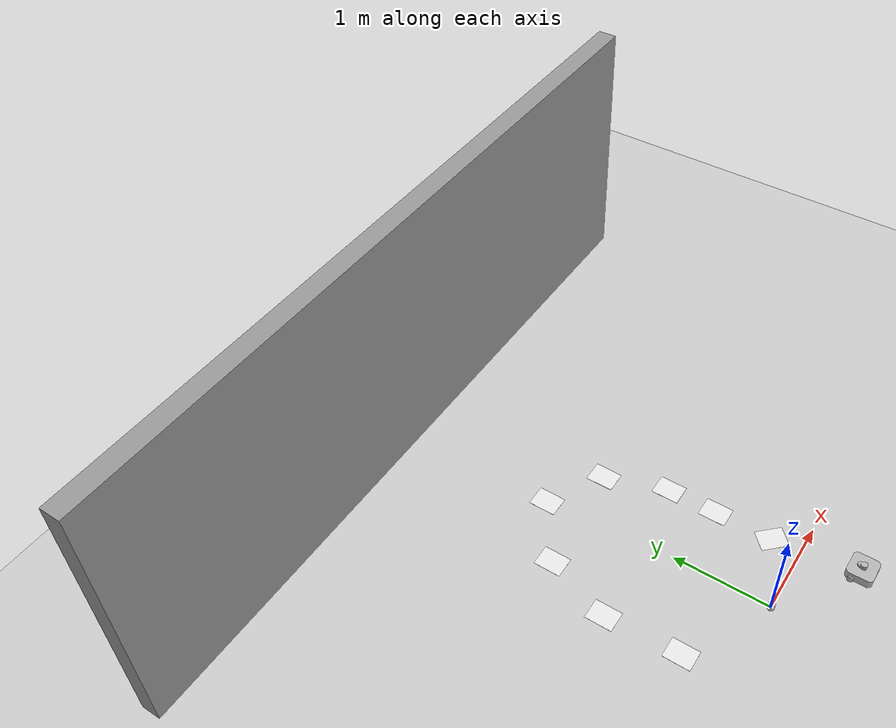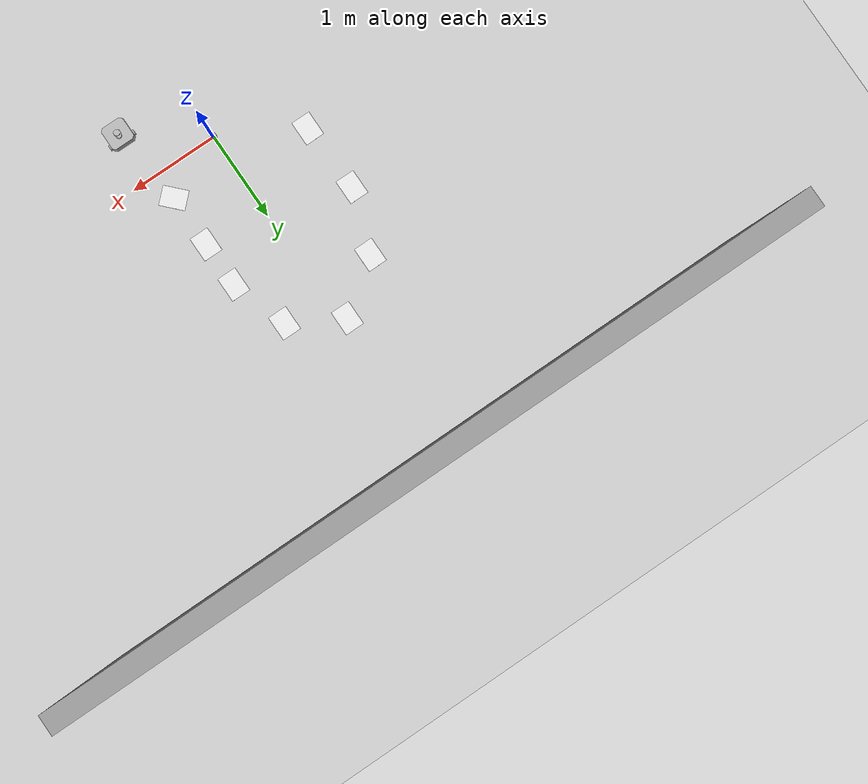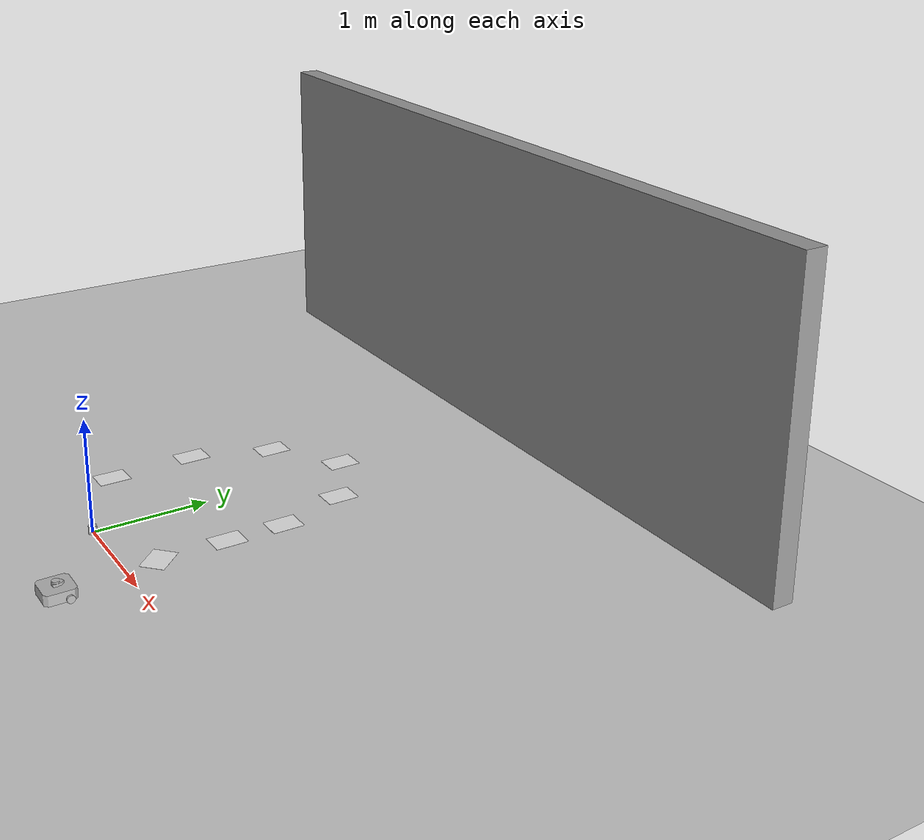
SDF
<sdf version="1.7">
 <world name="animated_box_world">
  <include><uri>model://ground_plane</uri></include>
  <include><uri>model://sun</uri></include>
  <scene><ambient>0.4 0.4 0.4 1</ambient><background>0.7 0.7 0.7 1</background><shadows>0</shadows></scene>
  <model name="track"><include><uri>model://lane_markings</uri></include></model>
  <model name="turtlebot">
   <include><uri>model://umd_turtlebot3_waffle_pi</uri></include>
   <pose>0.8 -0.5 0.0005 0 -0 1.57</pose>
  </model>
  <model name="beer">
   <include><uri>model://beer</uri></include>
   <plugin name="my_plugin" filename="libanimated_box.so">
    <trajectory>
     <waypoint><time>0</time><pose>0 2 0 0 0 -1.57</pose></waypoint>
     <waypoint><time>2</time><pose>0 -1 0 0 0 -1.57</pose></waypoint>
     <waypoint><time>2.5</time><pose>0 -1 0 0 0 1.57</pose></waypoint>
     <waypoint><time>5.5</time><pose>0 -1 0 0 0 1.57</pose></waypoint>
     <waypoint><time>10</time><pose>0 2 0 0 0 1.57</pose></waypoint>
     <waypoint><time>10</time><pose>0 2 0 0 0 -1.57</pose></waypoint>
    </trajectory>
   </plugin>
  </model>
  <model name="grey_2"><include><uri>model://grey_wall</uri></include><pose>0 4 0.0005 0 -0 0</pose></model>
 </world>
</sdf>

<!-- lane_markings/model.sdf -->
<sdf version="1.5">
    <model name='lane_markings'>
      <pose>0.0 0.0 0.0 0.0 0.0 0.0</pose>

      <include>
        <name>paper1</name>
        <uri>model://paper_letter_size</uri>
        <pose>0.693715 0.885508 0.0005 0 -0 0</pose>
      </include>

      <include>
        <name>paper2</name>
        <uri>model://paper_letter_size</uri>
        <pose>0.696717 0.294755 0.0005 0 0 0.760685</pose>
      </include>

      <include>
        <name>paper3</name>
        <uri>model://paper_letter_size</uri>
        <pose>0.690265 1.39362 0.0005 0 -0 0</pose>
      </include>

      <include>
        <name>paper4</name>
        <uri>model://paper_letter_size</uri>
        <pose>0.482471 2.02232 0.0005 0 -0 0</pose>
      </include>

      <include>
        <name>paper5</name>
        <uri>model://paper_letter_size</uri>
        <pose>-0.082798 2.34506 0.0005 0 -0 0</pose>
      </include>

      <include>
        <name>paper6</name>
        <uri>model://paper_letter_size</uri>
        <pose>-0.649394 1.93556 0.0005 0 -0 0</pose>
      </include>

      <include>
        <name>paper7</name>
        <uri>model://paper_letter_size</uri>
        <pose>-0.88953 1.24394 0.0005 0 -0 0</pose>
      </include>

      <include>
        <name>paper8</name>
        <uri>model://paper_letter_size</uri>
        <pose>-0.856204 0.476271 0.0005 0 4e-06 0</pose>
      </include>

      <static>1</static>
      <allow_auto_disable>1</allow_auto_disable>
    </model>
</sdf>

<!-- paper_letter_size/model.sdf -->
<sdf version="1.5">
    <model name='paper_letter_size'>
    <pose>0.0 0.0 0.0 0.0 0.0 0.0</pose>
      <link name='link'>
        <inertial>
          <mass>1</mass>
          <inertia>
            <ixx>0.166667</ixx>
            <ixy>0</ixy>
            <ixz>0</ixz>
            <iyy>0.166667</iyy>
            <iyz>0</iyz>
            <izz>0.166667</izz>
          </inertia>
          <pose>0 0 0 0 -0 0</pose>
        </inertial>
        <self_collide>0</self_collide>
        <enable_wind>0</enable_wind>
        <kinematic>0</kinematic>
        <pose>0 0 0 0 -0 0</pose>
        <gravity>1</gravity>
        <visual name='visual'>
          <geometry>
            <box>
              <size>0.2159 0.2794 0.001</size>
            </box>
          </geometry>
          <material>
            <script>
              <name>Gazebo/White</name>
              <uri>file://media/materials/scripts/gazebo.material</uri>
            </script>
            <shader type='pixel'>
              <normal_map>__default__</normal_map>
            </shader>
            <ambient>1 1 1 1</ambient>
            <diffuse>1 1 1 1</diffuse>
            <specular>0 0 0 1</specular>
            <emissive>0 0 0 1</emissive>
          </material>
          <pose>0 0 0 0 -0 0</pose>
          <transparency>0</transparency>
          <cast_shadows>1</cast_shadows>
        </visual>
        <collision name='collision'>
          <laser_retro>0</laser_retro>
          <max_contacts>10</max_contacts>
          <pose>0 0 0 0 -0 0</pose>
          <geometry>
            <box>
              <size>0.2159 0.2794 0.001</size>
            </box>
          </geometry>
          <surface>
            <friction>
              <ode>
                <mu>1</mu>
                <mu2>1</mu2>
                <fdir1>0 0 0</fdir1>
                <slip1>0</slip1>
                <slip2>0</slip2>
              </ode>
              <torsional>
                <coefficient>1</coefficient>
                <patch_radius>0</patch_radius>
                <surface_radius>0</surface_radius>
                <use_patch_radius>1</use_patch_radius>
                <ode>
                  <slip>0</slip>
                </ode>
              </torsional>
            </friction>
            <bounce>
              <restitution_coefficient>0</restitution_coefficient>
              <threshold>1e+06</threshold>
            </bounce>
            <contact>
              <collide_without_contact>0</collide_without_contact>
              <collide_without_contact_bitmask>1</collide_without_contact_bitmask>
              <collide_bitmask>1</collide_bitmask>
              <ode>
                <soft_cfm>0</soft_cfm>
                <soft_erp>0.2</soft_erp>
                <kp>1e+13</kp>
                <kd>1</kd>
                <max_vel>0.01</max_vel>
                <min_depth>0</min_depth>
              </ode>
              <bullet>
                <split_impulse>1</split_impulse>
                <split_impulse_penetration_threshold>-0.01</split_impulse_penetration_threshold>
                <soft_cfm>0</soft_cfm>
                <soft_erp>0.2</soft_erp>
                <kp>1e+13</kp>
                <kd>1</kd>
              </bullet>
            </contact>
          </surface>
        </collision>
      </link>
      <static>1</static>
      <allow_auto_disable>1</allow_auto_disable>
    </model>
</sdf>

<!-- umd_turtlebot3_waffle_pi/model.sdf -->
<sdf version="1.5">
  <model name="umd_turtlebot3_waffle_pi">
  <pose>0.0 0.0 0.0 0.0 0.0 0.0</pose>

    <link name="base_footprint"/>

    <link name="base_link">

      <inertial>
        <pose>-0.064 0 0.048 0 0 0</pose>
        <inertia>
          <ixx>4.2111447e-02</ixx>
          <ixy>0</ixy>
          <ixz>0</ixz>
          <iyy>4.2111447e-02</iyy>
          <iyz>0</iyz>
          <izz>7.5254874e-02</izz>
        </inertia>
        <mass>1.3729096e+00</mass>
      </inertial>

      <collision name="base_collision">
        <pose>-0.064 0 0.048 0 0 0</pose>
        <geometry>
          <box>
            <size>0.265 0.265 0.089</size>
          </box>
        </geometry>
      </collision>

      <visual name="base_visual">
        <pose>-0.064 0 0 0 0 0</pose>
        <geometry>
          <mesh>
            <uri>model://turtlebot3_common/meshes/waffle_pi_base.dae</uri>
            <scale>0.001 0.001 0.001</scale>
          </mesh>
        </geometry>
      </visual>
    </link>

    <link name="imu_link">
      <sensor name="tb3_imu" type="imu">
        <always_on>true</always_on>
        <update_rate>200</update_rate>
        <imu>
          <angular_velocity>
            <x>
              <noise type="gaussian">
                <mean>0.0</mean>
                <stddev>2e-4</stddev>
              </noise>
            </x>
            <y>
              <noise type="gaussian">
                <mean>0.0</mean>
                <stddev>2e-4</stddev>
              </noise>
            </y>
            <z>
              <noise type="gaussian">
                <mean>0.0</mean>
                <stddev>2e-4</stddev>
              </noise>
            </z>
          </angular_velocity>
          <linear_acceleration>
            <x>
              <noise type="gaussian">
                <mean>0.0</mean>
                <stddev>1.7e-2</stddev>
              </noise>
            </x>
            <y>
              <noise type="gaussian">
                <mean>0.0</mean>
                <stddev>1.7e-2</stddev>
              </noise>
            </y>
            <z>
              <noise type="gaussian">
                <mean>0.0</mean>
                <stddev>1.7e-2</stddev>
              </noise>
            </z>
          </linear_acceleration>
        </imu>
        <plugin name="turtlebot3_imu" filename="libgazebo_ros_imu_sensor.so">
          <ros>
            <remapping>~/out:=imu</remapping>
          </ros>
        </plugin>
      </sensor>
    </link>

    <link name="base_scan">
      <inertial>
        <pose>-0.052 0 0.111 0 0 0</pose>
        <inertia>
          <ixx>0.001</ixx>
          <ixy>0.000</ixy>
          <ixz>0.000</ixz>
          <iyy>0.001</iyy>
          <iyz>0.000</iyz>
          <izz>0.001</izz>
        </inertia>
        <mass>0.114</mass>
      </inertial>

      <collision name="lidar_sensor_collision">
        <pose>-0.052 0 0.111 0 0 0</pose>
        <geometry>
          <cylinder>
            <radius>0.0508</radius>
            <length>0.055</length>
          </cylinder>
        </geometry>
      </collision>

      <visual name="lidar_sensor_visual">
        <pose>-0.064 0 0.121 0 0 0</pose>
        <geometry>
          <mesh>
            <uri>model://turtlebot3_common/meshes/lds.dae</uri>
            <scale>0.001 0.001 0.001</scale>
          </mesh>
        </geometry>
      </visual>

      <sensor name="hls_lfcd_lds" type="ray">
        <always_on>false</always_on> <!--TC: disable the laser scan -->
        <visualize>false</visualize> <!-- TC: don't show the laser scan-->
        <pose>-0.064 0 0.121 0 0 0</pose>
        <update_rate>5</update_rate>
        <ray>
          <scan>
            <horizontal>
              <samples>360</samples>
              <resolution>1.000000</resolution>
              <min_angle>0.000000</min_angle>
              <max_angle>6.280000</max_angle>
            </horizontal>
          </scan>
          <range>
            <min>0.120000</min>
            <max>3.5</max>
            <resolution>0.015000</resolution>
          </range>
          <noise>
            <type>gaussian</type>
            <mean>0.0</mean>
            <stddev>0.01</stddev>
          </noise>
        </ray>
        <plugin name="turtlebot3_laserscan" filename="libgazebo_ros_ray_sensor.so">
          <ros>
            <remapping>~/out:=scan</remapping>
          </ros>
          <output_type>sensor_msgs/LaserScan</output_type>
          <frame_name>base_scan</frame_name>
        </plugin>
      </sensor>
    </link>

    <link name="wheel_left_link">

      <inertial>
        <pose>0.0 0.144 0.023 -1.57 0 0</pose>
        <inertia>
          <ixx>1.8158194e-03</ixx>
          <ixy>-9.3392e-12</ixy>
          <ixz>1.04909e-11</ixz>
          <iyy>3.2922126e-03</iyy>
          <iyz>5.75694e-11</iyz>
          <izz>1.8158194e-03</izz>
        </inertia>
        <mass>2.8498940e-02</mass>
      </inertial>

      <collision name="wheel_left_collision">
        <pose>0.0 0.144 0.023 -1.57 0 0</pose>
        <geometry>
          <cylinder>
            <radius>0.033</radius>
            <length>0.018</length>
          </cylinder>
        </geometry>
        <surface>
          <!-- This friction pamareter don't contain reliable data!! -->
          <friction>
            <ode>
              <mu>100000</mu>
              <mu2>100000</mu2>
              <fdir1>0 0 0</fdir1>
              <slip1>0.0</slip1>
              <slip2>0.0</slip2>
            </ode>
          </friction>
          <contact>
            <ode>
              <soft_cfm>0</soft_cfm>
              <soft_erp>0.2</soft_erp>
              <kp>1e+5</kp>
              <kd>1</kd>
              <max_vel>0.01</max_vel>
              <min_depth>0.001</min_depth>
            </ode>
          </contact>
        </surface>
      </collision>

      <visual name="wheel_left_visual">
        <pose>0.0 0.144 0.023 0 0 0</pose>
        <geometry>
          <mesh>
            <uri>model://turtlebot3_common/meshes/tire.dae</uri>
            <scale>0.001 0.001 0.001</scale>
          </mesh>
        </geometry>
      </visual>
    </link>

    <link name="wheel_right_link">

      <inertial>
        <pose>0.0 -0.144 0.023 -1.57 0 0</pose>
        <inertia>
          <ixx>1.8158194e-03</ixx>
          <ixy>-9.3392e-12</ixy>
          <ixz>1.04909e-11</ixz>
          <iyy>3.2922126e-03</iyy>
          <iyz>5.75694e-11</iyz>
          <izz>1.8158194e-03</izz>
        </inertia>
        <mass>2.8498940e-02</mass>
      </inertial>

      <collision name="wheel_right_collision">
        <pose>0.0 -0.144 0.023 -1.57 0 0</pose>
        <geometry>
          <cylinder>
            <radius>0.033</radius>
            <length>0.018</length>
          </cylinder>
        </geometry>
        <surface>
          <!-- This friction pamareter don't contain reliable data!! -->
          <friction>
            <ode>
              <mu>100000</mu>
              <mu2>100000</mu2>
              <fdir1>0 0 0</fdir1>
              <slip1>0.0</slip1>
              <slip2>0.0</slip2>
            </ode>
          </friction>
          <contact>
            <ode>
              <soft_cfm>0</soft_cfm>
              <soft_erp>0.2</soft_erp>
              <kp>1e+5</kp>
              <kd>1</kd>
              <max_vel>0.01</max_vel>
              <min_depth>0.001</min_depth>
            </ode>
          </contact>
        </surface>
      </collision>

      <visual name="wheel_right_visual">
        <pose>0.0 -0.144 0.023 0 0 0</pose>
        <geometry>
          <mesh>
            <uri>model://turtlebot3_common/meshes/tire.dae</uri>
            <scale>0.001 0.001 0.001</scale>
          </mesh>
        </geometry>
      </visual>
    </link>

    <link name='caster_back_right_link'>
      <pose>-0.177 -0.064 -0.004 -1.57 0 0</pose>
      <inertial>
        <mass>0.001</mass>
        <inertia>
          <ixx>0.00001</ixx>
          <ixy>0.000</ixy>
          <ixz>0.000</ixz>
          <iyy>0.00001</iyy>
          <iyz>0.000</iyz>
          <izz>0.00001</izz>
        </inertia>
      </inertial>
      <collision name='collision'>
        <geometry>
          <sphere>
            <radius>0.005000</radius>
          </sphere>
        </geometry>
        <surface>
          <contact>
            <ode>
              <soft_cfm>0</soft_cfm>
              <soft_erp>0.2</soft_erp>
              <kp>1e+5</kp>
              <kd>1</kd>
              <max_vel>0.01</max_vel>
              <min_depth>0.001</min_depth>
            </ode>
          </contact>
        </surface>
      </collision>
    </link>

    <link name='caster_back_left_link'>
      <pose>-0.177 0.064 -0.004 -1.57 0 0</pose>
      <inertial>
        <mass>0.001</mass>
        <inertia>
          <ixx>0.00001</ixx>
          <ixy>0.000</ixy>
          <ixz>0.000</ixz>
          <iyy>0.00001</iyy>
          <iyz>0.000</iyz>
          <izz>0.00001</izz>
        </inertia>
      </inertial>
      <collision name='collision'>
        <geometry>
          <sphere>
            <radius>0.005000</radius>
          </sphere>
        </geometry>
        <surface>
          <contact>
            <ode>
              <soft_cfm>0</soft_cfm>
              <soft_erp>0.2</soft_erp>
              <kp>1e+5</kp>
              <kd>1</kd>
              <max_vel>0.01</max_vel>
              <min_depth>0.001</min_depth>
            </ode>
          </contact>
        </surface>
      </collision>
    </link>

    <link name="camera_link"/>

    <link name="camera_rgb_optical_frame">
      <inertial>
        <pose>0.076 0.0 0.093 0 0 0</pose>
        <inertia>
          <ixx>0.001</ixx>
          <ixy>0.000</ixy>
          <ixz>0.000</ixz>
          <iyy>0.001</iyy>
          <iyz>0.000</iyz>
          <izz>0.001</izz>
        </inertia>
        <mass>0.035</mass>
      </inertial>

      <pose>0.076 0.0 0.093 0 0 0</pose>
      <sensor name="camera" type="camera">
        <always_on>true</always_on>
        <visualize>false</visualize> <!-- TC: don't show the fov outline-->
        <update_rate>30</update_rate>
        <camera name="picam">
          <horizontal_fov>1.085595</horizontal_fov>
          <image>
              <width>640</width>
              <height>480</height>
              <format>R8G8B8</format>
          </image>
          <clip>
              <near>0.03</near>
              <far>100</far>
          </clip>
          <noise>
            <type>gaussian</type>
            <mean>0.0</mean>
            <stddev>0.007</stddev>
          </noise>
        </camera>
          <plugin name="camera_driver" filename="libgazebo_ros_camera.so">
            <ros>
            </ros>
          </plugin>
      </sensor>
    </link>

    <joint name="base_joint" type="fixed">
      <parent>base_footprint</parent>
      <child>base_link</child>
      <pose>0.0 0.0 0.010 0 0 0</pose>
    </joint>

    <joint name="wheel_left_joint" type="revolute">
      <parent>base_link</parent>
      <child>wheel_left_link</child>
      <pose>0.0 0.144 0.023 -1.57 0 0</pose>
      <axis>
        <xyz>0 0 1</xyz>
      </axis>
    </joint>

    <joint name="wheel_right_joint" type="revolute">
      <parent>base_link</parent>
      <child>wheel_right_link</child>
      <pose>0.0 -0.144 0.023 -1.57 0 0</pose>
      <axis>
        <xyz>0 0 1</xyz>
      </axis>
    </joint>

    <joint name='caster_back_right_joint' type='ball'>
      <parent>base_link</parent>
      <child>caster_back_right_link</child>
    </joint>

    <joint name='caster_back_left_joint' type='ball'>
      <parent>base_link</parent>
      <child>caster_back_left_link</child>
    </joint>

    <joint name="imu_joint" type="fixed">
      <parent>base_link</parent>
      <child>imu_link</child>
      <pose>-0.032 0 0.068 0 0 0</pose>
      <axis>
        <xyz>0 0 1</xyz>
      </axis>
    </joint>

    <joint name="lidar_joint" type="fixed">
      <parent>base_link</parent>
      <child>base_scan</child>
      <pose>-0.064 0 0.121 0 0 0</pose>
      <axis>
        <xyz>0 0 1</xyz>
      </axis>
    </joint>

    <joint name="camera_joint" type="fixed">
      <parent>base_link</parent>
      <child>camera_link</child>
      <pose>0.073 -0.011 0.084 0 0 0</pose>
      <axis>
        <xyz>0 0 1</xyz>
      </axis>
    </joint>

    <joint name="camera_rgb_joint" type="fixed">
      <parent>camera_link</parent>
      <child>camera_rgb_optical_frame</child>
      <pose>0.003 0.011 0.009 0 0 0</pose>
      <axis>
        <xyz>0 0 1</xyz>
      </axis>
    </joint>

    <plugin name="turtlebot3_diff_drive" filename="libgazebo_ros_diff_drive.so">

      <ros>
      </ros>

      <update_rate>30</update_rate>

      <!-- wheels -->
      <left_joint>wheel_left_joint</left_joint>
      <right_joint>wheel_right_joint</right_joint>

      <!-- kinematics -->
      <wheel_separation>0.287</wheel_separation>
      <wheel_diameter>0.066</wheel_diameter>

      <!-- limits -->
      <max_wheel_torque>20</max_wheel_torque>
      <max_wheel_acceleration>1.0</max_wheel_acceleration>

      <command_topic>cmd_vel</command_topic>

      <!-- output -->
      <publish_odom>true</publish_odom>
      <publish_odom_tf>true</publish_odom_tf>
      <publish_wheel_tf>false</publish_wheel_tf>

      <odometry_topic>odom</odometry_topic>
      <odometry_frame>odom</odometry_frame>
      <robot_base_frame>base_footprint</robot_base_frame>

    </plugin>

    <plugin name="turtlebot3_joint_state" filename="libgazebo_ros_joint_state_publisher.so">
      <ros>
        <remapping>~/out:=joint_states</remapping>
      </ros>
      <update_rate>30</update_rate>
      <joint_name>wheel_left_joint</joint_name>
      <joint_name>wheel_right_joint</joint_name>
    </plugin>

  </model>
</sdf>

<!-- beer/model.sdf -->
<sdf version='1.4'>
  <model name="beer">
    <link name='link'>
      <pose>0 0 0 0 0 0</pose>
      <inertial>
        <mass>0.390</mass>
        <inertia>
          <ixx>0.00058</ixx>
          <ixy>0</ixy>
          <ixz>0</ixz>
          <iyy>0.00058</iyy>
          <iyz>0</iyz>
          <izz>0.00025</izz>
        </inertia>
      </inertial>
      <collision name='collision'>
        <geometry>
          <cylinder>
            <radius>0.03500</radius>
            <length>0.12000</length>
          </cylinder>
        </geometry>
      </collision>

      <visual name='visual'>
        <geometry>
          <cylinder>
            <radius>0.03500</radius>
            <length>0.12000</length>
          </cylinder>
        </geometry>

        <material>
          <script>
            <uri>model://beer/materials/scripts</uri>
            <uri>model://beer/materials/textures</uri>
            <name>Beer/Diffuse</name>
          </script>
        </material>
      </visual>
    </link>
  </model>
</sdf>

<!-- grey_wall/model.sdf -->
<sdf version="1.5">
  <model name="grey_wall">
    <static>true</static>
    <link name="link">
      <pose>0 0 1.4 0 0 0</pose>
      <collision name="collision">
        <geometry>
          <box>
            <size>7.5 0.2 2.8</size>
          </box>
        </geometry>
      </collision>
      <visual name="visual">
        <cast_shadows>false</cast_shadows>
        <geometry>
          <box>
            <size>7.5 0.2 2.8</size>
          </box>
        </geometry>
        <material>
          <script>
            <uri>model://../model_source/models/grey_wall/materials/scripts</uri>
            <uri>model://../model_source/models/grey_wall/materials/textures</uri>
            <name>vrc/grey_wall</name>
          </script>
        </material>
      </visual>
    </link>
  </model>
</sdf>
